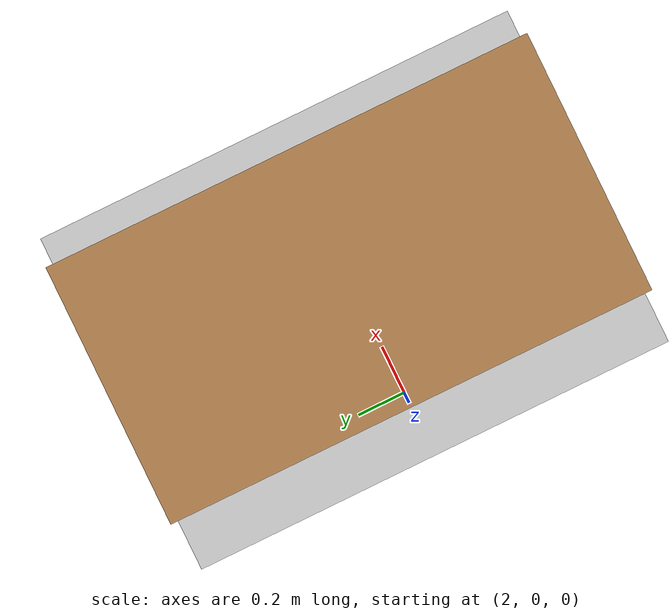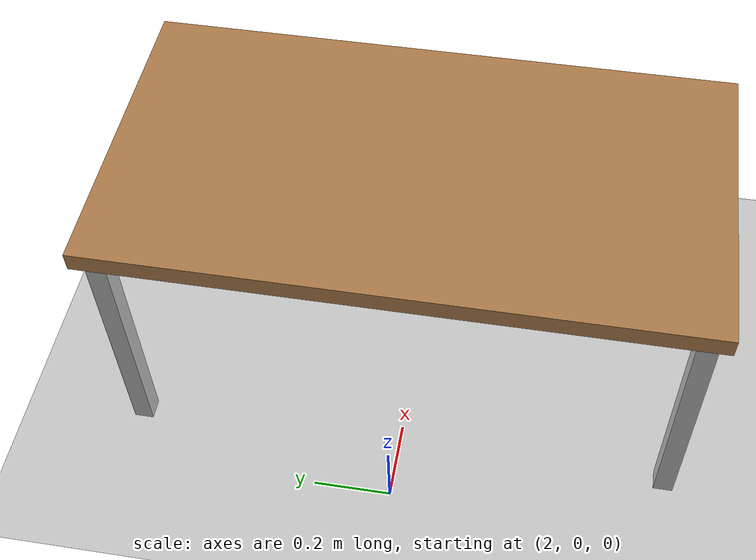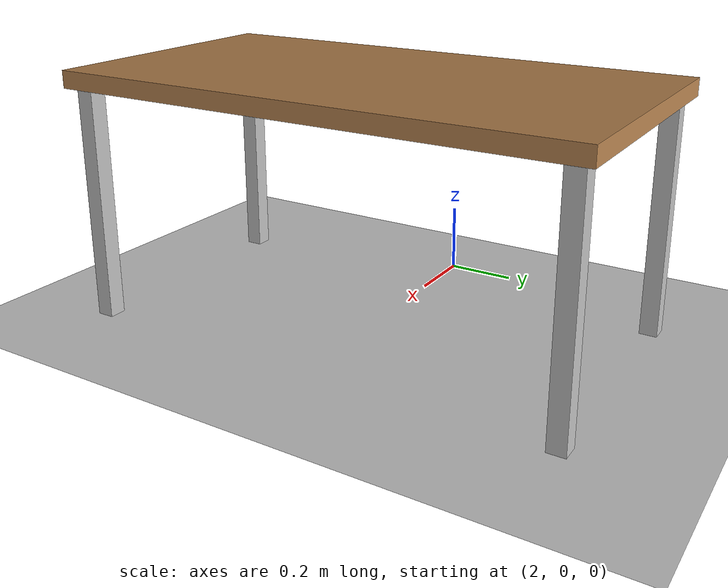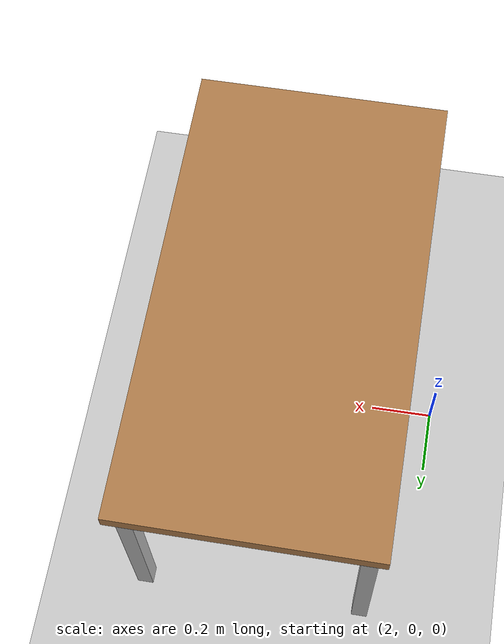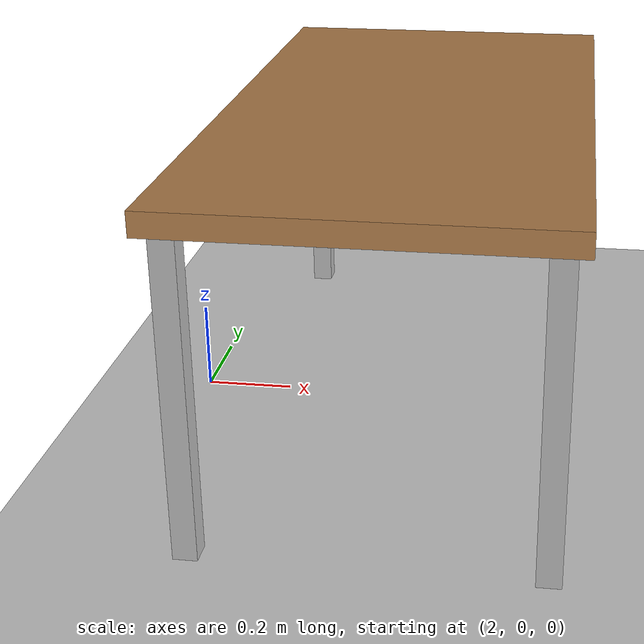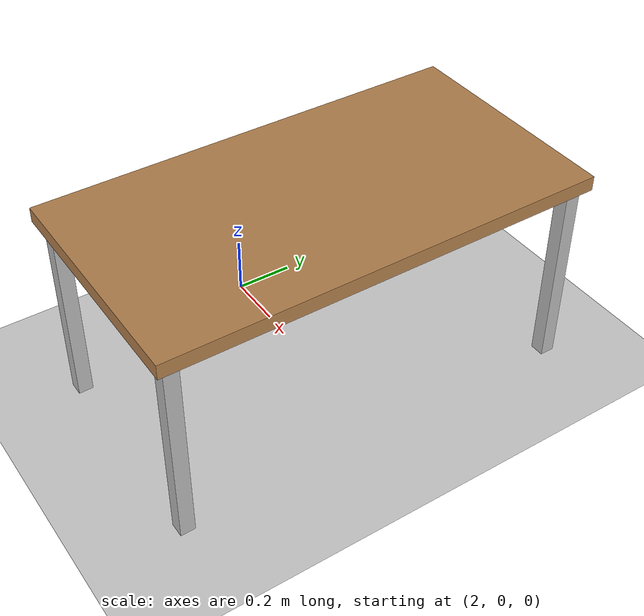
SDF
<?xml version="1.0" ?>
<sdf version="1.7">
  <world name="factory_world">

    <physics name="dart" type="dart">
      <dart>
        <collision_detector>fcl</collision_detector>
        <solver>
          <type>dantzig</type>
        </solver>
      </dart>
    </physics>

    <plugin
      filename="libgazebo_ros_init.so"
      name="gazebo_ros_init">
    </plugin>
    <plugin
      filename="libgazebo_ros_factory.so"
      name="gazebo_ros_factory">
    </plugin>

    <light type="directional" name="sun">
      <cast_shadows>true</cast_shadows>
      <pose>0 0 10 0 0 0</pose>
      <diffuse>0.8 0.8 0.8 1</diffuse>
      <specular>0.2 0.2 0.2 1</specular>
      <direction>-0.5 0.1 -0.9</direction>
    </light>

    <model name="ground_plane">
      <static>true</static>
      <link name="link">
        <collision name="collision">
          <geometry><plane><normal>0 0 1</normal><size>20 20</size></plane></geometry>
        </collision>
        <visual name="visual">
          <geometry><plane><normal>0 0 1</normal><size>20 20</size></plane></geometry>
          <material><script><uri>file://media/materials/scripts/gazebo.material</uri><name>Gazebo/Grey</name></script></material>
        </visual>
      </link>
    </model>

    <model name='workstation'>
      <static>true</static>
      <pose>2.5 0 0 0 0 1.57</pose>
      <link name='link'>
        <collision name='surface'><pose>0 0 0.7 0 0 0</pose><geometry><box><size>1.5 0.8 0.05</size></box></geometry></collision>
        <visual name='visual_surface'><pose>0 0 0.7 0 0 0</pose><geometry><box><size>1.5 0.8 0.05</size></box></geometry>
           <material><script><uri>file://media/materials/scripts/gazebo.material</uri><name>Gazebo/Wood</name></script></material>
        </visual>
         <collision name='leg1'><pose>-0.7 -0.35 0.35 0 0 0</pose><geometry><box><size>0.05 0.05 0.7</size></box></geometry></collision>
         <visual name='visual_leg1'><pose>-0.7 -0.35 0.35 0 0 0</pose><geometry><box><size>0.05 0.05 0.7</size></box></geometry></visual>
         <collision name='leg2'><pose>0.7 -0.35 0.35 0 0 0</pose><geometry><box><size>0.05 0.05 0.7</size></box></geometry></collision>
         <visual name='visual_leg2'><pose>0.7 -0.35 0.35 0 0 0</pose><geometry><box><size>0.05 0.05 0.7</size></box></geometry></visual>
         <collision name='leg3'><pose>-0.7 0.35 0.35 0 0 0</pose><geometry><box><size>0.05 0.05 0.7</size></box></geometry></collision>
         <visual name='visual_leg3'><pose>-0.7 0.35 0.35 0 0 0</pose><geometry><box><size>0.05 0.05 0.7</size></box></geometry></visual>
         <collision name='leg4'><pose>0.7 0.35 0.35 0 0 0</pose><geometry><box><size>0.05 0.05 0.7</size></box></geometry></collision>
         <visual name='visual_leg4'><pose>0.7 0.35 0.35 0 0 0</pose><geometry><box><size>0.05 0.05 0.7</size></box></geometry></visual>
      </link>
    </model>
  </world>
</sdf>
